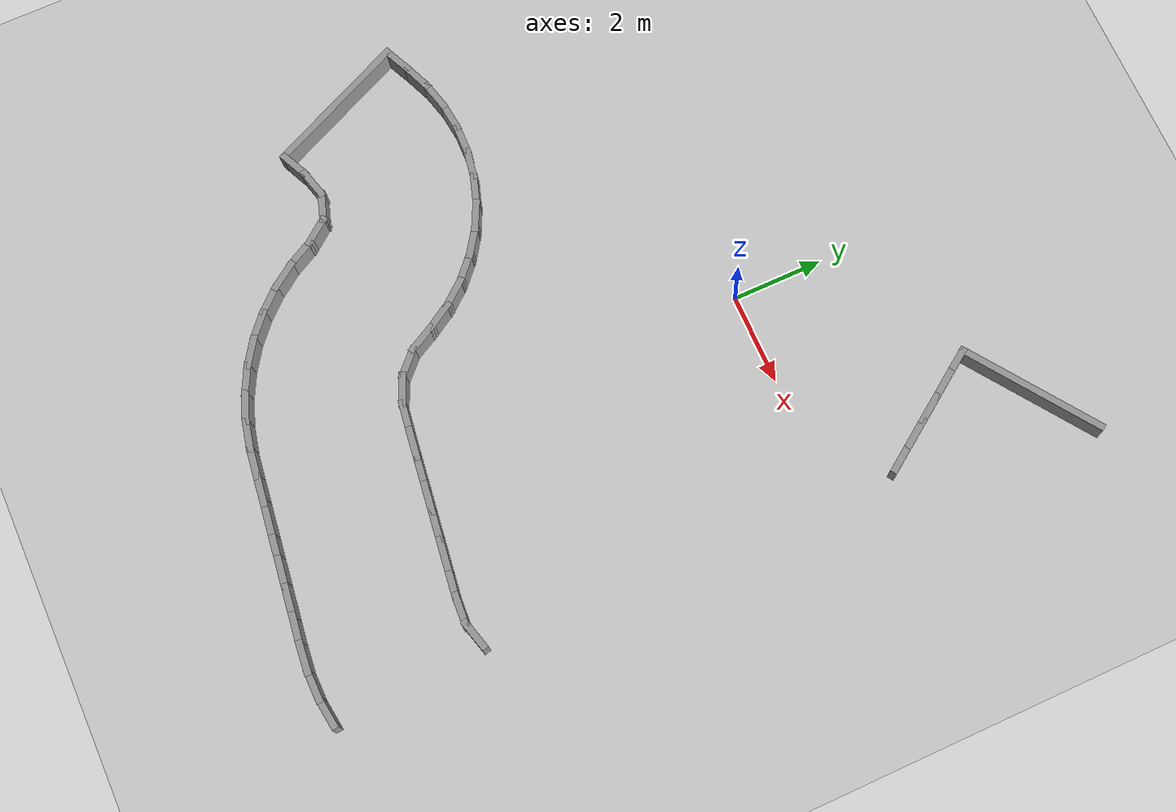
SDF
<sdf version="1.7">
 <world name="default">
  <model name="ground_plane">
   <static>1</static>
   <link name="link">
    <collision name="collision">
     <geometry><plane><normal>0 0 1</normal><size>100 100</size></plane></geometry>
     <surface><friction><ode><mu>100</mu><mu2>50</mu2></ode></friction></surface>
    </collision>
    <visual name="visual">
     <cast_shadows>0</cast_shadows>
     <geometry><plane><normal>0 0 1</normal><size>100 100</size></plane></geometry>
     <material>
      <script><uri>file://media/materials/scripts/gazebo.material</uri><name>Gazebo/Grey</name></script>
     </material>
    </visual>
   </link>
  </model>
  <model name="rand_turn_06">
   <link name="Wall_0">
    <collision name="Wall_0_Collision">
     <geometry><box><size>0.7500 0.1500 0.6000</size></box></geometry>
     <pose>0 0 0.3000 0 -0 0</pose>
    </collision>
    <visual name="Wall_0_Visual">
     <pose>0 0 0.3000 0 -0 0</pose>
     <geometry><box><size>0.7500 0.1500 0.6000</size></box></geometry>
     <material>
      <script><uri>file://media/materials/scripts/gazebo.material</uri><name>Gazebo/Grey</name></script>
      <ambient>1 1 1 1</ambient>
     </material>
    </visual>
    <pose>-7.8508 -4.4987 0 0 -0 0.43278</pose>
   </link>
   <link name="Wall_1">
    <collision name="Wall_1_Collision">
     <geometry><box><size>0.7496 0.1500 0.6000</size></box></geometry>
     <pose>0 0 0.3000 0 -0 0</pose>
    </collision>
    <visual name="Wall_1_Visual">
     <pose>0 0 0.3000 0 -0 0</pose>
     <geometry><box><size>0.7496 0.1500 0.6000</size></box></geometry>
     <material>
      <script><uri>file://media/materials/scripts/gazebo.material</uri><name>Gazebo/Grey</name></script>
      <ambient>1 1 1 1</ambient>
     </material>
    </visual>
    <pose>-7.3015 -4.2581 0 0 -0 0.39289</pose>
   </link>
   <link name="Wall_2">
    <collision name="Wall_2_Collision">
     <geometry><box><size>0.7495 0.1500 0.6000</size></box></geometry>
     <pose>0 0 0.3000 0 -0 0</pose>
    </collision>
    <visual name="Wall_2_Visual">
     <pose>0 0 0.3000 0 -0 0</pose>
     <geometry><box><size>0.7495 0.1500 0.6000</size></box></geometry>
     <material>
      <script><uri>file://media/materials/scripts/gazebo.material</uri><name>Gazebo/Grey</name></script>
      <ambient>1 1 1 1</ambient>
     </material>
    </visual>
    <pose>-6.7347 -4.0669 0 0 -0 0.25763</pose>
   </link>
   <link name="Wall_3">
    <collision name="Wall_3_Collision">
     <geometry><box><size>0.7495 0.1500 0.6000</size></box></geometry>
     <pose>0 0 0.3000 0 -0 0</pose>
    </collision>
    <visual name="Wall_3_Visual">
     <pose>0 0 0.3000 0 -0 0</pose>
     <geometry><box><size>0.7495 0.1500 0.6000</size></box></geometry>
     <material>
      <script><uri>file://media/materials/scripts/gazebo.material</uri><name>Gazebo/Grey</name></script>
      <ambient>1 1 1 1</ambient>
     </material>
    </visual>
    <pose>-6.1471 -3.9563 0 0 -0 0.11463</pose>
   </link>
   <link name="Wall_4">
    <collision name="Wall_4_Collision">
     <geometry><box><size>0.7494 0.1500 0.6000</size></box></geometry>
     <pose>0 0 0.3000 0 -0 0</pose>
    </collision>
    <visual name="Wall_4_Visual">
     <pose>0 0 0.3000 0 -0 0</pose>
     <geometry><box><size>0.7494 0.1500 0.6000</size></box></geometry>
     <material>
      <script><uri>file://media/materials/scripts/gazebo.material</uri><name>Gazebo/Grey</name></script>
      <ambient>1 1 1 1</ambient>
     </material>
    </visual>
    <pose>-5.5497 -3.9296 0 0 -0 -0.02550</pose>
   </link>
   <link name="Wall_5">
    <collision name="Wall_5_Collision">
     <geometry><box><size>0.7495 0.1500 0.6000</size></box></geometry>
     <pose>0 0 0.3000 0 -0 0</pose>
    </collision>
    <visual name="Wall_5_Visual">
     <pose>0 0 0.3000 0 -0 0</pose>
     <geometry><box><size>0.7495 0.1500 0.6000</size></box></geometry>
     <material>
      <script><uri>file://media/materials/scripts/gazebo.material</uri><name>Gazebo/Grey</name></script>
      <ambient>1 1 1 1</ambient>
     </material>
    </visual>
    <pose>-4.9544 -3.9867 0 0 -0 -0.16562</pose>
   </link>
   <link name="Wall_6">
    <collision name="Wall_6_Collision">
     <geometry><box><size>0.7495 0.1500 0.6000</size></box></geometry>
     <pose>0 0 0.3000 0 -0 0</pose>
    </collision>
    <visual name="Wall_6_Visual">
     <pose>0 0 0.3000 0 -0 0</pose>
     <geometry><box><size>0.7495 0.1500 0.6000</size></box></geometry>
     <material>
      <script><uri>file://media/materials/scripts/gazebo.material</uri><name>Gazebo/Grey</name></script>
      <ambient>1 1 1 1</ambient>
     </material>
    </visual>
    <pose>-4.3731 -4.1267 0 0 -0 -0.30713</pose>
   </link>
   <link name="Wall_7">
    <collision name="Wall_7_Collision">
     <geometry><box><size>0.7495 0.1500 0.6000</size></box></geometry>
     <pose>0 0 0.3000 0 -0 0</pose>
    </collision>
    <visual name="Wall_7_Visual">
     <pose>0 0 0.3000 0 -0 0</pose>
     <geometry><box><size>0.7495 0.1500 0.6000</size></box></geometry>
     <material>
      <script><uri>file://media/materials/scripts/gazebo.material</uri><name>Gazebo/Grey</name></script>
      <ambient>1 1 1 1</ambient>
     </material>
    </visual>
    <pose>-3.8173 -4.3474 0 0 -0 -0.44875</pose>
   </link>
   <link name="Wall_8">
    <collision name="Wall_8_Collision">
     <geometry><box><size>0.7494 0.1500 0.6000</size></box></geometry>
     <pose>0 0 0.3000 0 -0 0</pose>
    </collision>
    <visual name="Wall_8_Visual">
     <pose>0 0 0.3000 0 -0 0</pose>
     <geometry><box><size>0.7494 0.1500 0.6000</size></box></geometry>
     <material>
      <script><uri>file://media/materials/scripts/gazebo.material</uri><name>Gazebo/Grey</name></script>
      <ambient>1 1 1 1</ambient>
     </material>
    </visual>
    <pose>-3.2980 -4.6439 0 0 -0 -0.58887</pose>
   </link>
   <link name="Wall_9">
    <collision name="Wall_9_Collision">
     <geometry><box><size>0.7495 0.1500 0.6000</size></box></geometry>
     <pose>0 0 0.3000 0 -0 0</pose>
    </collision>
    <visual name="Wall_9_Visual">
     <pose>0 0 0.3000 0 -0 0</pose>
     <geometry><box><size>0.7495 0.1500 0.6000</size></box></geometry>
     <material>
      <script><uri>file://media/materials/scripts/gazebo.material</uri><name>Gazebo/Grey</name></script>
      <ambient>1 1 1 1</ambient>
     </material>
    </visual>
    <pose>-2.8252 -5.0100 0 0 -0 -0.72898</pose>
   </link>
   <link name="Wall_10">
    <collision name="Wall_10_Collision">
     <geometry><box><size>0.7495 0.1500 0.6000</size></box></geometry>
     <pose>0 0 0.3000 0 -0 0</pose>
    </collision>
    <visual name="Wall_10_Visual">
     <pose>0 0 0.3000 0 -0 0</pose>
     <geometry><box><size>0.7495 0.1500 0.6000</size></box></geometry>
     <material>
      <script><uri>file://media/materials/scripts/gazebo.material</uri><name>Gazebo/Grey</name></script>
      <ambient>1 1 1 1</ambient>
     </material>
    </visual>
    <pose>-2.4088 -5.4391 0 0 -0 -0.87191</pose>
   </link>
   <link name="Wall_11">
    <collision name="Wall_11_Collision">
     <geometry><box><size>0.7494 0.1500 0.6000</size></box></geometry>
     <pose>0 0 0.3000 0 -0 0</pose>
    </collision>
    <visual name="Wall_11_Visual">
     <pose>0 0 0.3000 0 -0 0</pose>
     <geometry><box><size>0.7494 0.1500 0.6000</size></box></geometry>
     <material>
      <script><uri>file://media/materials/scripts/gazebo.material</uri><name>Gazebo/Grey</name></script>
      <ambient>1 1 1 1</ambient>
     </material>
    </visual>
    <pose>-2.0571 -5.9228 0 0 -0 -1.01212</pose>
   </link>
   <link name="Wall_12">
    <collision name="Wall_12_Collision">
     <geometry><box><size>0.7490 0.1500 0.6000</size></box></geometry>
     <pose>0 0 0.3000 0 -0 0</pose>
    </collision>
    <visual name="Wall_12_Visual">
     <pose>0 0 0.3000 0 -0 0</pose>
     <geometry><box><size>0.7490 0.1500 0.6000</size></box></geometry>
     <material>
      <script><uri>file://media/materials/scripts/gazebo.material</uri><name>Gazebo/Grey</name></script>
      <ambient>1 1 1 1</ambient>
     </material>
    </visual>
    <pose>-1.7540 -6.4394 0 0 -0 -1.06830</pose>
   </link>
   <link name="Wall_13">
    <collision name="Wall_13_Collision">
     <geometry><box><size>0.7468 0.1500 0.6000</size></box></geometry>
     <pose>0 0 0.3000 0 -0 0</pose>
    </collision>
    <visual name="Wall_13_Visual">
     <pose>0 0 0.3000 0 -0 0</pose>
     <geometry><box><size>0.7468 0.1500 0.6000</size></box></geometry>
     <material>
      <script><uri>file://media/materials/scripts/gazebo.material</uri><name>Gazebo/Grey</name></script>
      <ambient>1 1 1 1</ambient>
     </material>
    </visual>
    <pose>-1.3932 -6.9072 0 0 -0 -0.75874</pose>
   </link>
   <link name="Wall_14">
    <collision name="Wall_14_Collision">
     <geometry><box><size>0.7468 0.1500 0.6000</size></box></geometry>
     <pose>0 0 0.3000 0 -0 0</pose>
    </collision>
    <visual name="Wall_14_Visual">
     <pose>0 0 0.3000 0 -0 0</pose>
     <geometry><box><size>0.7468 0.1500 0.6000</size></box></geometry>
     <material>
      <script><uri>file://media/materials/scripts/gazebo.material</uri><name>Gazebo/Grey</name></script>
      <ambient>1 1 1 1</ambient>
     </material>
    </visual>
    <pose>-0.9022 -7.2298 0 0 -0 -0.40408</pose>
   </link>
   <link name="Wall_15">
    <collision name="Wall_15_Collision">
     <geometry><box><size>0.7498 0.1500 0.6000</size></box></geometry>
     <pose>0 0 0.3000 0 -0 0</pose>
    </collision>
    <visual name="Wall_15_Visual">
     <pose>0 0 0.3000 0 -0 0</pose>
     <geometry><box><size>0.7498 0.1500 0.6000</size></box></geometry>
     <material>
      <script><uri>file://media/materials/scripts/gazebo.material</uri><name>Gazebo/Grey</name></script>
      <ambient>1 1 1 1</ambient>
     </material>
    </visual>
    <pose>-0.3310 -7.3898 0 0 -0 -0.14270</pose>
   </link>
   <link name="Wall_16">
    <collision name="Wall_16_Collision">
     <geometry><box><size>0.7500 0.1500 0.6000</size></box></geometry>
     <pose>0 0 0.3000 0 -0 0</pose>
    </collision>
    <visual name="Wall_16_Visual">
     <pose>0 0 0.3000 0 -0 0</pose>
     <geometry><box><size>0.7500 0.1500 0.6000</size></box></geometry>
     <material>
      <script><uri>file://media/materials/scripts/gazebo.material</uri><name>Gazebo/Grey</name></script>
      <ambient>1 1 1 1</ambient>
     </material>
    </visual>
    <pose>0.2633 -7.4713 0 0 -0 -0.12992</pose>
   </link>
   <link name="Wall_17">
    <collision name="Wall_17_Collision">
     <geometry><box><size>0.7500 0.1500 0.6000</size></box></geometry>
     <pose>0 0 0.3000 0 -0 0</pose>
    </collision>
    <visual name="Wall_17_Visual">
     <pose>0 0 0.3000 0 -0 0</pose>
     <geometry><box><size>0.7500 0.1500 0.6000</size></box></geometry>
     <material>
      <script><uri>file://media/materials/scripts/gazebo.material</uri><name>Gazebo/Grey</name></script>
      <ambient>1 1 1 1</ambient>
     </material>
    </visual>
    <pose>0.8583 -7.5490 0 0 -0 -0.12992</pose>
   </link>
   <link name="Wall_18">
    <collision name="Wall_18_Collision">
     <geometry><box><size>0.7500 0.1500 0.6000</size></box></geometry>
     <pose>0 0 0.3000 0 -0 0</pose>
    </collision>
    <visual name="Wall_18_Visual">
     <pose>0 0 0.3000 0 -0 0</pose>
     <geometry><box><size>0.7500 0.1500 0.6000</size></box></geometry>
     <material>
      <script><uri>file://media/materials/scripts/gazebo.material</uri><name>Gazebo/Grey</name></script>
      <ambient>1 1 1 1</ambient>
     </material>
    </visual>
    <pose>1.4532 -7.6268 0 0 -0 -0.12992</pose>
   </link>
   <link name="Wall_19">
    <collision name="Wall_19_Collision">
     <geometry><box><size>0.7500 0.1500 0.6000</size></box></geometry>
     <pose>0 0 0.3000 0 -0 0</pose>
    </collision>
    <visual name="Wall_19_Visual">
     <pose>0 0 0.3000 0 -0 0</pose>
     <geometry><box><size>0.7500 0.1500 0.6000</size></box></geometry>
     <material>
      <script><uri>file://media/materials/scripts/gazebo.material</uri><name>Gazebo/Grey</name></script>
      <ambient>1 1 1 1</ambient>
     </material>
    </visual>
    <pose>2.0481 -7.7045 0 0 -0 -0.12992</pose>
   </link>
   <link name="Wall_20">
    <collision name="Wall_20_Collision">
     <geometry><box><size>0.7500 0.1500 0.6000</size></box></geometry>
     <pose>0 0 0.3000 0 -0 0</pose>
    </collision>
    <visual name="Wall_20_Visual">
     <pose>0 0 0.3000 0 -0 0</pose>
     <geometry><box><size>0.7500 0.1500 0.6000</size></box></geometry>
     <material>
      <script><uri>file://media/materials/scripts/gazebo.material</uri><name>Gazebo/Grey</name></script>
      <ambient>1 1 1 1</ambient>
     </material>
    </visual>
    <pose>2.6431 -7.7822 0 0 -0 -0.12992</pose>
   </link>
   <link name="Wall_21">
    <collision name="Wall_21_Collision">
     <geometry><box><size>0.7500 0.1500 0.6000</size></box></geometry>
     <pose>0 0 0.3000 0 -0 0</pose>
    </collision>
    <visual name="Wall_21_Visual">
     <pose>0 0 0.3000 0 -0 0</pose>
     <geometry><box><size>0.7500 0.1500 0.6000</size></box></geometry>
     <material>
      <script><uri>file://media/materials/scripts/gazebo.material</uri><name>Gazebo/Grey</name></script>
      <ambient>1 1 1 1</ambient>
     </material>
    </visual>
    <pose>3.2380 -7.8600 0 0 -0 -0.12992</pose>
   </link>
   <link name="Wall_22">
    <collision name="Wall_22_Collision">
     <geometry><box><size>0.7483 0.1500 0.6000</size></box></geometry>
     <pose>0 0 0.3000 0 -0 0</pose>
    </collision>
    <visual name="Wall_22_Visual">
     <pose>0 0 0.3000 0 -0 0</pose>
     <geometry><box><size>0.7483 0.1500 0.6000</size></box></geometry>
     <material>
      <script><uri>file://media/materials/scripts/gazebo.material</uri><name>Gazebo/Grey</name></script>
      <ambient>1 1 1 1</ambient>
     </material>
    </visual>
    <pose>3.8342 -7.9160 0 0 -0 -0.05757</pose>
   </link>
   <link name="Wall_23">
    <collision name="Wall_23_Collision">
     <geometry><box><size>0.7470 0.1500 0.6000</size></box></geometry>
     <pose>0 0 0.3000 0 -0 0</pose>
    </collision>
    <visual name="Wall_23_Visual">
     <pose>0 0 0.3000 0 -0 0</pose>
     <geometry><box><size>0.7470 0.1500 0.6000</size></box></geometry>
     <material>
      <script><uri>file://media/materials/scripts/gazebo.material</uri><name>Gazebo/Grey</name></script>
      <ambient>1 1 1 1</ambient>
     </material>
    </visual>
    <pose>4.4209 -7.8551 0 0 -0 0.26481</pose>
   </link>
   <link name="Wall_42">
    <collision name="Wall_42_Collision">
     <geometry><box><size>0.7500 0.1500 0.6000</size></box></geometry>
     <pose>0 0 0.3000 0 -0 0</pose>
    </collision>
    <visual name="Wall_42_Visual">
     <pose>0 0 0.3000 0 -0 0</pose>
     <geometry><box><size>0.7500 0.1500 0.6000</size></box></geometry>
     <material>
      <script><uri>file://media/materials/scripts/gazebo.material</uri><name>Gazebo/Grey</name></script>
      <ambient>1 1 1 1</ambient>
     </material>
    </visual>
    <pose>4.6971 1.5803 0 0 -0 2.18462</pose>
   </link>
   <link name="Wall_43">
    <collision name="Wall_43_Collision">
     <geometry><box><size>0.7500 0.1500 0.6000</size></box></geometry>
     <pose>0 0 0.3000 0 -0 0</pose>
    </collision>
    <visual name="Wall_43_Visual">
     <pose>0 0 0.3000 0 -0 0</pose>
     <geometry><box><size>0.7500 0.1500 0.6000</size></box></geometry>
     <material>
      <script><uri>file://media/materials/scripts/gazebo.material</uri><name>Gazebo/Grey</name></script>
      <ambient>1 1 1 1</ambient>
     </material>
    </visual>
    <pose>4.3515 2.0707 0 0 -0 2.18462</pose>
   </link>
   <link name="Wall_44">
    <collision name="Wall_44_Collision">
     <geometry><box><size>0.7500 0.1500 0.6000</size></box></geometry>
     <pose>0 0 0.3000 0 -0 0</pose>
    </collision>
    <visual name="Wall_44_Visual">
     <pose>0 0 0.3000 0 -0 0</pose>
     <geometry><box><size>0.7500 0.1500 0.6000</size></box></geometry>
     <material>
      <script><uri>file://media/materials/scripts/gazebo.material</uri><name>Gazebo/Grey</name></script>
      <ambient>1 1 1 1</ambient>
     </material>
    </visual>
    <pose>4.0059 2.5612 0 0 -0 2.18462</pose>
   </link>
   <link name="Wall_45">
    <collision name="Wall_45_Collision">
     <geometry><box><size>0.7500 0.1500 0.6000</size></box></geometry>
     <pose>0 0 0.3000 0 -0 0</pose>
    </collision>
    <visual name="Wall_45_Visual">
     <pose>0 0 0.3000 0 -0 0</pose>
     <geometry><box><size>0.7500 0.1500 0.6000</size></box></geometry>
     <material>
      <script><uri>file://media/materials/scripts/gazebo.material</uri><name>Gazebo/Grey</name></script>
      <ambient>1 1 1 1</ambient>
     </material>
    </visual>
    <pose>3.6603 3.0517 0 0 -0 2.18462</pose>
   </link>
   <link name="Wall_46">
    <collision name="Wall_46_Collision">
     <geometry><box><size>0.7092 0.1500 0.6000</size></box></geometry>
     <pose>0 0 0.3000 0 -0 0</pose>
    </collision>
    <visual name="Wall_46_Visual">
     <pose>0 0 0.3000 0 -0 0</pose>
     <geometry><box><size>0.7092 0.1500 0.6000</size></box></geometry>
     <material>
      <script><uri>file://media/materials/scripts/gazebo.material</uri><name>Gazebo/Grey</name></script>
      <ambient>1 1 1 1</ambient>
     </material>
    </visual>
    <pose>3.3265 3.5255 0 0 -0 2.18462</pose>
   </link>
   <link name="Wall_47">
    <collision name="Wall_47_Collision">
     <geometry><box><size>0.7500 0.1500 0.6000</size></box></geometry>
     <pose>0 0 0.3000 0 -0 0</pose>
    </collision>
    <visual name="Wall_47_Visual">
     <pose>0 0 0.3000 0 -0 0</pose>
     <geometry><box><size>0.7500 0.1500 0.6000</size></box></geometry>
     <material>
      <script><uri>file://media/materials/scripts/gazebo.material</uri><name>Gazebo/Grey</name></script>
      <ambient>1 1 1 1</ambient>
     </material>
    </visual>
    <pose>-6.4909 -7.4423 0 0 -0 0.43278</pose>
   </link>
   <link name="Wall_48">
    <collision name="Wall_48_Collision">
     <geometry><box><size>0.7435 0.1500 0.6000</size></box></geometry>
     <pose>0 0 0.3000 0 -0 0</pose>
    </collision>
    <visual name="Wall_48_Visual">
     <pose>0 0 0.3000 0 -0 0</pose>
     <geometry><box><size>0.7435 0.1500 0.6000</size></box></geometry>
     <material>
      <script><uri>file://media/materials/scripts/gazebo.material</uri><name>Gazebo/Grey</name></script>
      <ambient>1 1 1 1</ambient>
     </material>
    </visual>
    <pose>-5.9324 -7.2381 0 0 -0 0.26725</pose>
   </link>
   <link name="Wall_49">
    <collision name="Wall_49_Collision">
     <geometry><box><size>0.7413 0.1500 0.6000</size></box></geometry>
     <pose>0 0 0.3000 0 -0 0</pose>
    </collision>
    <visual name="Wall_49_Visual">
     <pose>0 0 0.3000 0 -0 0</pose>
     <geometry><box><size>0.7413 0.1500 0.6000</size></box></geometry>
     <material>
      <script><uri>file://media/materials/scripts/gazebo.material</uri><name>Gazebo/Grey</name></script>
      <ambient>1 1 1 1</ambient>
     </material>
    </visual>
    <pose>-5.3643 -7.2489 0 0 -0 -0.30638</pose>
   </link>
   <link name="Wall_50">
    <collision name="Wall_50_Collision">
     <geometry><box><size>0.7418 0.1500 0.6000</size></box></geometry>
     <pose>0 0 0.3000 0 -0 0</pose>
    </collision>
    <visual name="Wall_50_Visual">
     <pose>0 0 0.3000 0 -0 0</pose>
     <geometry><box><size>0.7418 0.1500 0.6000</size></box></geometry>
     <material>
      <script><uri>file://media/materials/scripts/gazebo.material</uri><name>Gazebo/Grey</name></script>
      <ambient>1 1 1 1</ambient>
     </material>
    </visual>
    <pose>-4.8971 -7.5688 0 0 -0 -0.89418</pose>
   </link>
   <link name="Wall_51">
    <collision name="Wall_51_Collision">
     <geometry><box><size>0.7496 0.1500 0.6000</size></box></geometry>
     <pose>0 0 0.3000 0 -0 0</pose>
    </collision>
    <visual name="Wall_51_Visual">
     <pose>0 0 0.3000 0 -0 0</pose>
     <geometry><box><size>0.7496 0.1500 0.6000</size></box></geometry>
     <material>
      <script><uri>file://media/materials/scripts/gazebo.material</uri><name>Gazebo/Grey</name></script>
      <ambient>1 1 1 1</ambient>
     </material>
    </visual>
    <pose>-4.5679 -8.0625 0 0 -0 -1.07000</pose>
   </link>
   <link name="Wall_52">
    <collision name="Wall_52_Collision">
     <geometry><box><size>0.7496 0.1500 0.6000</size></box></geometry>
     <pose>0 0 0.3000 0 -0 0</pose>
    </collision>
    <visual name="Wall_52_Visual">
     <pose>0 0 0.3000 0 -0 0</pose>
     <geometry><box><size>0.7496 0.1500 0.6000</size></box></geometry>
     <material>
      <script><uri>file://media/materials/scripts/gazebo.material</uri><name>Gazebo/Grey</name></script>
      <ambient>1 1 1 1</ambient>
     </material>
    </visual>
    <pose>-4.2493 -8.5691 0 0 -0 -0.94862</pose>
   </link>
   <link name="Wall_53">
    <collision name="Wall_53_Collision">
     <geometry><box><size>0.7496 0.1500 0.6000</size></box></geometry>
     <pose>0 0 0.3000 0 -0 0</pose>
    </collision>
    <visual name="Wall_53_Visual">
     <pose>0 0 0.3000 0 -0 0</pose>
     <geometry><box><size>0.7496 0.1500 0.6000</size></box></geometry>
     <material>
      <script><uri>file://media/materials/scripts/gazebo.material</uri><name>Gazebo/Grey</name></script>
      <ambient>1 1 1 1</ambient>
     </material>
    </visual>
    <pose>-3.8716 -9.0333 0 0 -0 -0.82701</pose>
   </link>
   <link name="Wall_54">
    <collision name="Wall_54_Collision">
     <geometry><box><size>0.7496 0.1500 0.6000</size></box></geometry>
     <pose>0 0 0.3000 0 -0 0</pose>
    </collision>
    <visual name="Wall_54_Visual">
     <pose>0 0 0.3000 0 -0 0</pose>
     <geometry><box><size>0.7496 0.1500 0.6000</size></box></geometry>
     <material>
      <script><uri>file://media/materials/scripts/gazebo.material</uri><name>Gazebo/Grey</name></script>
      <ambient>1 1 1 1</ambient>
     </material>
    </visual>
    <pose>-3.4403 -9.4483 0 0 -0 -0.70540</pose>
   </link>
   <link name="Wall_55">
    <collision name="Wall_55_Collision">
     <geometry><box><size>0.7496 0.1500 0.6000</size></box></geometry>
     <pose>0 0 0.3000 0 -0 0</pose>
    </collision>
    <visual name="Wall_55_Visual">
     <pose>0 0 0.3000 0 -0 0</pose>
     <geometry><box><size>0.7496 0.1500 0.6000</size></box></geometry>
     <material>
      <script><uri>file://media/materials/scripts/gazebo.material</uri><name>Gazebo/Grey</name></script>
      <ambient>1 1 1 1</ambient>
     </material>
    </visual>
    <pose>-2.9619 -9.8079 0 0 -0 -0.58379</pose>
   </link>
   <link name="Wall_56">
    <collision name="Wall_56_Collision">
     <geometry><box><size>0.7496 0.1500 0.6000</size></box></geometry>
     <pose>0 0 0.3000 0 -0 0</pose>
    </collision>
    <visual name="Wall_56_Visual">
     <pose>0 0 0.3000 0 -0 0</pose>
     <geometry><box><size>0.7496 0.1500 0.6000</size></box></geometry>
     <material>
      <script><uri>file://media/materials/scripts/gazebo.material</uri><name>Gazebo/Grey</name></script>
      <ambient>1 1 1 1</ambient>
     </material>
    </visual>
    <pose>-2.4435 -10.1068 0 0 -0 -0.46217</pose>
   </link>
   <link name="Wall_57">
    <collision name="Wall_57_Collision">
     <geometry><box><size>0.7496 0.1500 0.6000</size></box></geometry>
     <pose>0 0 0.3000 0 -0 0</pose>
    </collision>
    <visual name="Wall_57_Visual">
     <pose>0 0 0.3000 0 -0 0</pose>
     <geometry><box><size>0.7496 0.1500 0.6000</size></box></geometry>
     <material>
      <script><uri>file://media/materials/scripts/gazebo.material</uri><name>Gazebo/Grey</name></script>
      <ambient>1 1 1 1</ambient>
     </material>
    </visual>
    <pose>-1.8925 -10.3407 0 0 -0 -0.34056</pose>
   </link>
   <link name="Wall_58">
    <collision name="Wall_58_Collision">
     <geometry><box><size>0.7496 0.1500 0.6000</size></box></geometry>
     <pose>0 0 0.3000 0 -0 0</pose>
    </collision>
    <visual name="Wall_58_Visual">
     <pose>0 0 0.3000 0 -0 0</pose>
     <geometry><box><size>0.7496 0.1500 0.6000</size></box></geometry>
     <material>
      <script><uri>file://media/materials/scripts/gazebo.material</uri><name>Gazebo/Grey</name></script>
      <ambient>1 1 1 1</ambient>
     </material>
    </visual>
    <pose>-1.3173 -10.5059 0 0 -0 -0.21894</pose>
   </link>
   <link name="Wall_59">
    <collision name="Wall_59_Collision">
     <geometry><box><size>0.7500 0.1500 0.6000</size></box></geometry>
     <pose>0 0 0.3000 0 -0 0</pose>
    </collision>
    <visual name="Wall_59_Visual">
     <pose>0 0 0.3000 0 -0 0</pose>
     <geometry><box><size>0.7500 0.1500 0.6000</size></box></geometry>
     <material>
      <script><uri>file://media/materials/scripts/gazebo.material</uri><name>Gazebo/Grey</name></script>
      <ambient>1 1 1 1</ambient>
     </material>
    </visual>
    <pose>-0.7274 -10.6109 0 0 -0 -0.13343</pose>
   </link>
   <link name="Wall_60">
    <collision name="Wall_60_Collision">
     <geometry><box><size>0.7500 0.1500 0.6000</size></box></geometry>
     <pose>0 0 0.3000 0 -0 0</pose>
    </collision>
    <visual name="Wall_60_Visual">
     <pose>0 0 0.3000 0 -0 0</pose>
     <geometry><box><size>0.7500 0.1500 0.6000</size></box></geometry>
     <material>
      <script><uri>file://media/materials/scripts/gazebo.material</uri><name>Gazebo/Grey</name></script>
      <ambient>1 1 1 1</ambient>
     </material>
    </visual>
    <pose>-0.1326 -10.6897 0 0 -0 -0.12992</pose>
   </link>
   <link name="Wall_61">
    <collision name="Wall_61_Collision">
     <geometry><box><size>0.7500 0.1500 0.6000</size></box></geometry>
     <pose>0 0 0.3000 0 -0 0</pose>
    </collision>
    <visual name="Wall_61_Visual">
     <pose>0 0 0.3000 0 -0 0</pose>
     <geometry><box><size>0.7500 0.1500 0.6000</size></box></geometry>
     <material>
      <script><uri>file://media/materials/scripts/gazebo.material</uri><name>Gazebo/Grey</name></script>
      <ambient>1 1 1 1</ambient>
     </material>
    </visual>
    <pose>0.4624 -10.7674 0 0 -0 -0.12992</pose>
   </link>
   <link name="Wall_62">
    <collision name="Wall_62_Collision">
     <geometry><box><size>0.7500 0.1500 0.6000</size></box></geometry>
     <pose>0 0 0.3000 0 -0 0</pose>
    </collision>
    <visual name="Wall_62_Visual">
     <pose>0 0 0.3000 0 -0 0</pose>
     <geometry><box><size>0.7500 0.1500 0.6000</size></box></geometry>
     <material>
      <script><uri>file://media/materials/scripts/gazebo.material</uri><name>Gazebo/Grey</name></script>
      <ambient>1 1 1 1</ambient>
     </material>
    </visual>
    <pose>1.0573 -10.8452 0 0 -0 -0.12992</pose>
   </link>
   <link name="Wall_63">
    <collision name="Wall_63_Collision">
     <geometry><box><size>0.7500 0.1500 0.6000</size></box></geometry>
     <pose>0 0 0.3000 0 -0 0</pose>
    </collision>
    <visual name="Wall_63_Visual">
     <pose>0 0 0.3000 0 -0 0</pose>
     <geometry><box><size>0.7500 0.1500 0.6000</size></box></geometry>
     <material>
      <script><uri>file://media/materials/scripts/gazebo.material</uri><name>Gazebo/Grey</name></script>
      <ambient>1 1 1 1</ambient>
     </material>
    </visual>
    <pose>1.6522 -10.9229 0 0 -0 -0.12992</pose>
   </link>
   <link name="Wall_64">
    <collision name="Wall_64_Collision">
     <geometry><box><size>0.7500 0.1500 0.6000</size></box></geometry>
     <pose>0 0 0.3000 0 -0 0</pose>
    </collision>
    <visual name="Wall_64_Visual">
     <pose>0 0 0.3000 0 -0 0</pose>
     <geometry><box><size>0.7500 0.1500 0.6000</size></box></geometry>
     <material>
      <script><uri>file://media/materials/scripts/gazebo.material</uri><name>Gazebo/Grey</name></script>
      <ambient>1 1 1 1</ambient>
     </material>
    </visual>
    <pose>2.2472 -11.0006 0 0 -0 -0.12992</pose>
   </link>
   <link name="Wall_65">
    <collision name="Wall_65_Collision">
     <geometry><box><size>0.7500 0.1500 0.6000</size></box></geometry>
     <pose>0 0 0.3000 0 -0 0</pose>
    </collision>
    <visual name="Wall_65_Visual">
     <pose>0 0 0.3000 0 -0 0</pose>
     <geometry><box><size>0.7500 0.1500 0.6000</size></box></geometry>
     <material>
      <script><uri>file://media/materials/scripts/gazebo.material</uri><name>Gazebo/Grey</name></script>
      <ambient>1 1 1 1</ambient>
     </material>
    </visual>
    <pose>2.8421 -11.0784 0 0 -0 -0.12992</pose>
   </link>
   <link name="Wall_66">
    <collision name="Wall_66_Collision">
     <geometry><box><size>0.7498 0.1500 0.6000</size></box></geometry>
     <pose>0 0 0.3000 0 -0 0</pose>
    </collision>
    <visual name="Wall_66_Visual">
     <pose>0 0 0.3000 0 -0 0</pose>
     <geometry><box><size>0.7498 0.1500 0.6000</size></box></geometry>
     <material>
      <script><uri>file://media/materials/scripts/gazebo.material</uri><name>Gazebo/Grey</name></script>
      <ambient>1 1 1 1</ambient>
     </material>
    </visual>
    <pose>3.4380 -11.1474 0 0 -0 -0.10084</pose>
   </link>
   <link name="Wall_67">
    <collision name="Wall_67_Collision">
     <geometry><box><size>0.7496 0.1500 0.6000</size></box></geometry>
     <pose>0 0 0.3000 0 -0 0</pose>
    </collision>
    <visual name="Wall_67_Visual">
     <pose>0 0 0.3000 0 -0 0</pose>
     <geometry><box><size>0.7496 0.1500 0.6000</size></box></geometry>
     <material>
      <script><uri>file://media/materials/scripts/gazebo.material</uri><name>Gazebo/Grey</name></script>
      <ambient>1 1 1 1</ambient>
     </material>
    </visual>
    <pose>4.0361 -11.1737 0 0 -0 0.01292</pose>
   </link>
   <link name="Wall_68">
    <collision name="Wall_68_Collision">
     <geometry><box><size>0.7496 0.1500 0.6000</size></box></geometry>
     <pose>0 0 0.3000 0 -0 0</pose>
    </collision>
    <visual name="Wall_68_Visual">
     <pose>0 0 0.3000 0 -0 0</pose>
     <geometry><box><size>0.7496 0.1500 0.6000</size></box></geometry>
     <material>
      <script><uri>file://media/materials/scripts/gazebo.material</uri><name>Gazebo/Grey</name></script>
      <ambient>1 1 1 1</ambient>
     </material>
    </visual>
    <pose>4.6331 -11.1300 0 0 -0 0.13327</pose>
   </link>
   <link name="Wall_104">
    <collision name="Wall_104_Collision">
     <geometry><box><size>3.3926 0.1500 0.6000</size></box></geometry>
     <pose>0 0 0.3000 0 -0 0</pose>
    </collision>
    <visual name="Wall_104_Visual">
     <pose>0 0 0.3000 0 -0 0</pose>
     <geometry><box><size>3.3926 0.1500 0.6000</size></box></geometry>
     <material>
      <script><uri>file://media/materials/scripts/gazebo.material</uri><name>Gazebo/Grey</name></script>
      <ambient>1 1 1 1</ambient>
     </material>
    </visual>
    <pose>-7.4432 -6.0963 0 0 -0 2.00357</pose>
   </link>
   <link name="Wall_105">
    <collision name="Wall_105_Collision">
     <geometry><box><size>3.3926 0.1500 0.6000</size></box></geometry>
     <pose>0 0 0.3000 0 -0 0</pose>
    </collision>
    <visual name="Wall_105_Visual">
     <pose>0 0 0.3000 0 -0 0</pose>
     <geometry><box><size>3.3926 0.1500 0.6000</size></box></geometry>
     <material>
      <script><uri>file://media/materials/scripts/gazebo.material</uri><name>Gazebo/Grey</name></script>
      <ambient>1 1 1 1</ambient>
     </material>
    </visual>
    <pose>4.4907 4.6879 0 0 -0 0.61382</pose>
   </link>
   <static>1</static>
  </model>
 </world>
</sdf>
